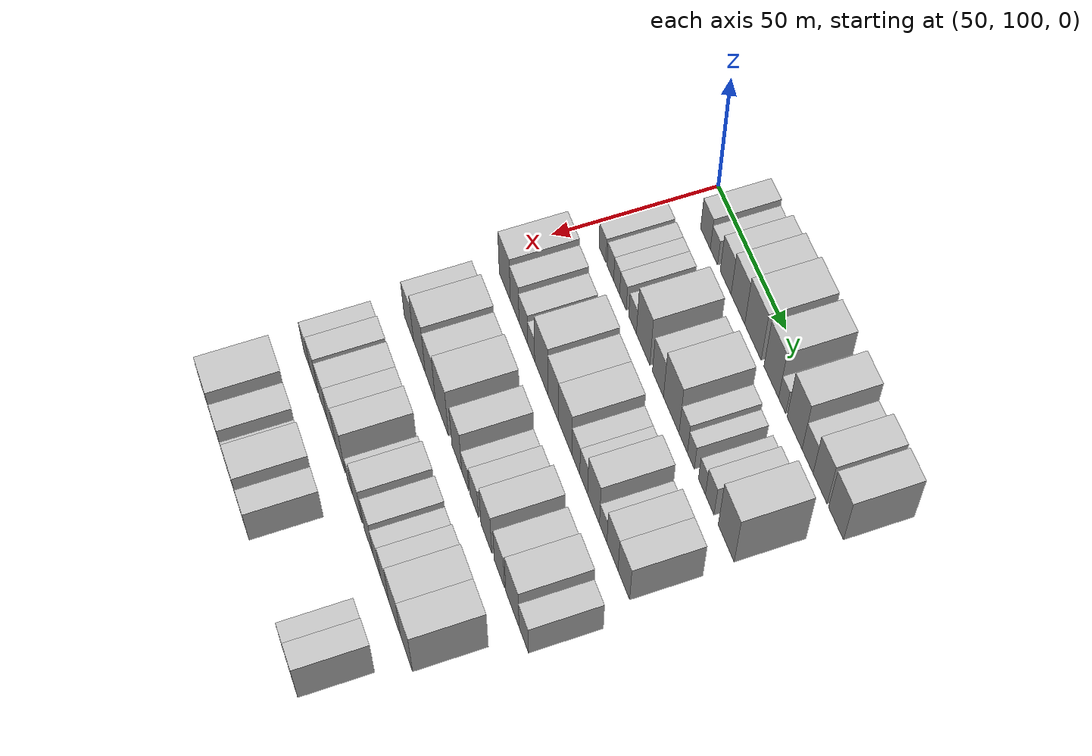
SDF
<sdf version="1.6">
 <world name="default">
  <model name="building_63">
   <static>1</static>
   <pose>50.0000 115.3771 0 0.000000 0.000000 0.000000</pose>
   <link name="link">
    <pose>0 0 7.50 0 0 0</pose>
    <collision name="collision"><geometry><box><size>20.0000 7.4433 15.0000</size></box></geometry></collision>
    <visual name="visual">
     <cast_shadows>0</cast_shadows>
     <geometry><box><size>20.0000 7.4433 15.0000</size></box></geometry>
     <material>
      <script>
       <uri>model://HANNAS_wall/materials/scripts</uri>
       <uri>model://HANNAS_wall/materials/textures</uri>
       <name>vrc/HANNAS_wall</name>
      </script>
     </material>
    </visual>
   </link>
  </model>
  <model name="building_64">
   <static>1</static>
   <pose>50.0000 121.8383 0 0.000000 0.000000 0.000000</pose>
   <link name="link">
    <pose>0 0 6.00 0 0 0</pose>
    <collision name="collision"><geometry><box><size>20.0000 5.4791 12.0000</size></box></geometry></collision>
    <visual name="visual">
     <cast_shadows>0</cast_shadows>
     <geometry><box><size>20.0000 5.4791 12.0000</size></box></geometry>
     <material>
      <script>
       <uri>model://HANNAS_wall/materials/scripts</uri>
       <uri>model://HANNAS_wall/materials/textures</uri>
       <name>vrc/HANNAS_wall</name>
      </script>
     </material>
    </visual>
   </link>
  </model>
  <model name="building_65">
   <static>1</static>
   <pose>50.0000 130.6631 0 0.000000 0.000000 0.000000</pose>
   <link name="link">
    <pose>0 0 9.00 0 0 0</pose>
    <collision name="collision"><geometry><box><size>20.0000 8.1705 18.0000</size></box></geometry></collision>
    <visual name="visual">
     <cast_shadows>0</cast_shadows>
     <geometry><box><size>20.0000 8.1705 18.0000</size></box></geometry>
     <material>
      <script>
       <uri>model://HANNAS_wall/materials/scripts</uri>
       <uri>model://HANNAS_wall/materials/textures</uri>
       <name>vrc/HANNAS_wall</name>
      </script>
     </material>
    </visual>
   </link>
  </model>
  <model name="building_66">
   <static>1</static>
   <pose>50.0000 139.7896 0 0.000000 0.000000 0.000000</pose>
   <link name="link">
    <pose>0 0 10.50 0 0 0</pose>
    <collision name="collision"><geometry><box><size>20.0000 10.0825 21.0000</size></box></geometry></collision>
    <visual name="visual">
     <cast_shadows>0</cast_shadows>
     <geometry><box><size>20.0000 10.0825 21.0000</size></box></geometry>
     <material>
      <script>
       <uri>model://HANNAS_wall/materials/scripts</uri>
       <uri>model://HANNAS_wall/materials/textures</uri>
       <name>vrc/HANNAS_wall</name>
      </script>
     </material>
    </visual>
   </link>
  </model>
  <model name="building_67">
   <static>1</static>
   <pose>50.0000 150.7996 0 0.000000 0.000000 0.000000</pose>
   <link name="link">
    <pose>0 0 12.00 0 0 0</pose>
    <collision name="collision"><geometry><box><size>20.0000 11.9375 24.0000</size></box></geometry></collision>
    <visual name="visual">
     <cast_shadows>0</cast_shadows>
     <geometry><box><size>20.0000 11.9375 24.0000</size></box></geometry>
     <material>
      <script>
       <uri>model://HANNAS_wall/materials/scripts</uri>
       <uri>model://HANNAS_wall/materials/textures</uri>
       <name>vrc/HANNAS_wall</name>
      </script>
     </material>
    </visual>
   </link>
  </model>
  <model name="building_68">
   <static>1</static>
   <pose>50.0000 163.9670 0 0.000000 0.000000 0.000000</pose>
   <link name="link">
    <pose>0 0 12.00 0 0 0</pose>
    <collision name="collision"><geometry><box><size>20.0000 10.3972 24.0000</size></box></geometry></collision>
    <visual name="visual">
     <cast_shadows>0</cast_shadows>
     <geometry><box><size>20.0000 10.3972 24.0000</size></box></geometry>
     <material>
      <script>
       <uri>model://HANNAS_wall/materials/scripts</uri>
       <uri>model://HANNAS_wall/materials/textures</uri>
       <name>vrc/HANNAS_wall</name>
      </script>
     </material>
    </visual>
   </link>
  </model>
  <model name="building_69">
   <static>1</static>
   <pose>50.0000 171.6645 0 0.000000 0.000000 0.000000</pose>
   <link name="link">
    <pose>0 0 6.00 0 0 0</pose>
    <collision name="collision"><geometry><box><size>20.0000 4.9980 12.0000</size></box></geometry></collision>
    <visual name="visual">
     <cast_shadows>0</cast_shadows>
     <geometry><box><size>20.0000 4.9980 12.0000</size></box></geometry>
     <material>
      <script>
       <uri>model://HANNAS_wall/materials/scripts</uri>
       <uri>model://HANNAS_wall/materials/textures</uri>
       <name>vrc/HANNAS_wall</name>
      </script>
     </material>
    </visual>
   </link>
  </model>
  <model name="building_70">
   <static>1</static>
   <pose>50.0000 180.3432 0 0.000000 0.000000 0.000000</pose>
   <link name="link">
    <pose>0 0 12.00 0 0 0</pose>
    <collision name="collision"><geometry><box><size>20.0000 10.3592 24.0000</size></box></geometry></collision>
    <visual name="visual">
     <cast_shadows>0</cast_shadows>
     <geometry><box><size>20.0000 10.3592 24.0000</size></box></geometry>
     <material>
      <script>
       <uri>model://HANNAS_wall/materials/scripts</uri>
       <uri>model://HANNAS_wall/materials/textures</uri>
       <name>vrc/HANNAS_wall</name>
      </script>
     </material>
    </visual>
   </link>
  </model>
  <model name="building_71">
   <static>1</static>
   <pose>50.0000 189.2716 0 0.000000 0.000000 0.000000</pose>
   <link name="link">
    <pose>0 0 7.50 0 0 0</pose>
    <collision name="collision"><geometry><box><size>20.0000 7.4976 15.0000</size></box></geometry></collision>
    <visual name="visual">
     <cast_shadows>0</cast_shadows>
     <geometry><box><size>20.0000 7.4976 15.0000</size></box></geometry>
     <material>
      <script>
       <uri>model://HANNAS_wall/materials/scripts</uri>
       <uri>model://HANNAS_wall/materials/textures</uri>
       <name>vrc/HANNAS_wall</name>
      </script>
     </material>
    </visual>
   </link>
  </model>
  <model name="building_72">
   <static>1</static>
   <pose>50.0000 197.7321 0 0.000000 0.000000 0.000000</pose>
   <link name="link">
    <pose>0 0 10.50 0 0 0</pose>
    <collision name="collision"><geometry><box><size>20.0000 9.4233 21.0000</size></box></geometry></collision>
    <visual name="visual">
     <cast_shadows>0</cast_shadows>
     <geometry><box><size>20.0000 9.4233 21.0000</size></box></geometry>
     <material>
      <script>
       <uri>model://HANNAS_wall/materials/scripts</uri>
       <uri>model://HANNAS_wall/materials/textures</uri>
       <name>vrc/HANNAS_wall</name>
      </script>
     </material>
    </visual>
   </link>
  </model>
  <model name="building_73">
   <static>1</static>
   <pose>50.0000 208.3866 0 0.000000 0.000000 0.000000</pose>
   <link name="link">
    <pose>0 0 10.50 0 0 0</pose>
    <collision name="collision"><geometry><box><size>20.0000 9.8857 21.0000</size></box></geometry></collision>
    <visual name="visual">
     <cast_shadows>0</cast_shadows>
     <geometry><box><size>20.0000 9.8857 21.0000</size></box></geometry>
     <material>
      <script>
       <uri>model://HANNAS_wall/materials/scripts</uri>
       <uri>model://HANNAS_wall/materials/textures</uri>
       <name>vrc/HANNAS_wall</name>
      </script>
     </material>
    </visual>
   </link>
  </model>
  <model name="building_176">
   <static>1</static>
   <pose>79.0000 110.8158 0 0.000000 0.000000 0.000000</pose>
   <link name="link">
    <pose>0 0 6.00 0 0 0</pose>
    <collision name="collision"><geometry><box><size>20.0000 5.6248 12.0000</size></box></geometry></collision>
    <visual name="visual">
     <cast_shadows>0</cast_shadows>
     <geometry><box><size>20.0000 5.6248 12.0000</size></box></geometry>
     <material>
      <script>
       <uri>model://HANNAS_wall/materials/scripts</uri>
       <uri>model://HANNAS_wall/materials/textures</uri>
       <name>vrc/HANNAS_wall</name>
      </script>
     </material>
    </visual>
   </link>
  </model>
  <model name="building_177">
   <static>1</static>
   <pose>79.0000 117.2338 0 0.000000 0.000000 0.000000</pose>
   <link name="link">
    <pose>0 0 6.00 0 0 0</pose>
    <collision name="collision"><geometry><box><size>20.0000 5.2111 12.0000</size></box></geometry></collision>
    <visual name="visual">
     <cast_shadows>0</cast_shadows>
     <geometry><box><size>20.0000 5.2111 12.0000</size></box></geometry>
     <material>
      <script>
       <uri>model://HANNAS_wall/materials/scripts</uri>
       <uri>model://HANNAS_wall/materials/textures</uri>
       <name>vrc/HANNAS_wall</name>
      </script>
     </material>
    </visual>
   </link>
  </model>
  <model name="building_178">
   <static>1</static>
   <pose>79.0000 122.2404 0 0.000000 0.000000 0.000000</pose>
   <link name="link">
    <pose>0 0 6.00 0 0 0</pose>
    <collision name="collision"><geometry><box><size>20.0000 4.8023 12.0000</size></box></geometry></collision>
    <visual name="visual">
     <cast_shadows>0</cast_shadows>
     <geometry><box><size>20.0000 4.8023 12.0000</size></box></geometry>
     <material>
      <script>
       <uri>model://HANNAS_wall/materials/scripts</uri>
       <uri>model://HANNAS_wall/materials/textures</uri>
       <name>vrc/HANNAS_wall</name>
      </script>
     </material>
    </visual>
   </link>
  </model>
  <model name="building_179">
   <static>1</static>
   <pose>79.0000 127.2567 0 0.000000 0.000000 0.000000</pose>
   <link name="link">
    <pose>0 0 6.00 0 0 0</pose>
    <collision name="collision"><geometry><box><size>20.0000 5.2304 12.0000</size></box></geometry></collision>
    <visual name="visual">
     <cast_shadows>0</cast_shadows>
     <geometry><box><size>20.0000 5.2304 12.0000</size></box></geometry>
     <material>
      <script>
       <uri>model://HANNAS_wall/materials/scripts</uri>
       <uri>model://HANNAS_wall/materials/textures</uri>
       <name>vrc/HANNAS_wall</name>
      </script>
     </material>
    </visual>
   </link>
  </model>
  <model name="building_180">
   <static>1</static>
   <pose>79.0000 134.8545 0 0.000000 0.000000 0.000000</pose>
   <link name="link">
    <pose>0 0 6.00 0 0 0</pose>
    <collision name="collision"><geometry><box><size>20.0000 5.9651 12.0000</size></box></geometry></collision>
    <visual name="visual">
     <cast_shadows>0</cast_shadows>
     <geometry><box><size>20.0000 5.9651 12.0000</size></box></geometry>
     <material>
      <script>
       <uri>model://HANNAS_wall/materials/scripts</uri>
       <uri>model://HANNAS_wall/materials/textures</uri>
       <name>vrc/HANNAS_wall</name>
      </script>
     </material>
    </visual>
   </link>
  </model>
  <model name="building_181">
   <static>1</static>
   <pose>79.0000 143.0494 0 0.000000 0.000000 0.000000</pose>
   <link name="link">
    <pose>0 0 12.00 0 0 0</pose>
    <collision name="collision"><geometry><box><size>20.0000 10.4246 24.0000</size></box></geometry></collision>
    <visual name="visual">
     <cast_shadows>0</cast_shadows>
     <geometry><box><size>20.0000 10.4246 24.0000</size></box></geometry>
     <material>
      <script>
       <uri>model://HANNAS_wall/materials/scripts</uri>
       <uri>model://HANNAS_wall/materials/textures</uri>
       <name>vrc/HANNAS_wall</name>
      </script>
     </material>
    </visual>
   </link>
  </model>
  <model name="building_182">
   <static>1</static>
   <pose>79.0000 154.4516 0 0.000000 0.000000 0.000000</pose>
   <link name="link">
    <pose>0 0 9.00 0 0 0</pose>
    <collision name="collision"><geometry><box><size>20.0000 8.3797 18.0000</size></box></geometry></collision>
    <visual name="visual">
     <cast_shadows>0</cast_shadows>
     <geometry><box><size>20.0000 8.3797 18.0000</size></box></geometry>
     <material>
      <script>
       <uri>model://HANNAS_wall/materials/scripts</uri>
       <uri>model://HANNAS_wall/materials/textures</uri>
       <name>vrc/HANNAS_wall</name>
      </script>
     </material>
    </visual>
   </link>
  </model>
  <model name="building_183">
   <static>1</static>
   <pose>79.0000 164.4471 0 0.000000 0.000000 0.000000</pose>
   <link name="link">
    <pose>0 0 12.00 0 0 0</pose>
    <collision name="collision"><geometry><box><size>20.0000 11.6113 24.0000</size></box></geometry></collision>
    <visual name="visual">
     <cast_shadows>0</cast_shadows>
     <geometry><box><size>20.0000 11.6113 24.0000</size></box></geometry>
     <material>
      <script>
       <uri>model://HANNAS_wall/materials/scripts</uri>
       <uri>model://HANNAS_wall/materials/textures</uri>
       <name>vrc/HANNAS_wall</name>
      </script>
     </material>
    </visual>
   </link>
  </model>
  <model name="building_184">
   <static>1</static>
   <pose>79.0000 173.3380 0 0.000000 0.000000 0.000000</pose>
   <link name="link">
    <pose>0 0 7.50 0 0 0</pose>
    <collision name="collision"><geometry><box><size>20.0000 6.1706 15.0000</size></box></geometry></collision>
    <visual name="visual">
     <cast_shadows>0</cast_shadows>
     <geometry><box><size>20.0000 6.1706 15.0000</size></box></geometry>
     <material>
      <script>
       <uri>model://HANNAS_wall/materials/scripts</uri>
       <uri>model://HANNAS_wall/materials/textures</uri>
       <name>vrc/HANNAS_wall</name>
      </script>
     </material>
    </visual>
   </link>
  </model>
  <model name="building_185">
   <static>1</static>
   <pose>79.0000 178.9590 0 0.000000 0.000000 0.000000</pose>
   <link name="link">
    <pose>0 0 6.00 0 0 0</pose>
    <collision name="collision"><geometry><box><size>20.0000 5.0712 12.0000</size></box></geometry></collision>
    <visual name="visual">
     <cast_shadows>0</cast_shadows>
     <geometry><box><size>20.0000 5.0712 12.0000</size></box></geometry>
     <material>
      <script>
       <uri>model://HANNAS_wall/materials/scripts</uri>
       <uri>model://HANNAS_wall/materials/textures</uri>
       <name>vrc/HANNAS_wall</name>
      </script>
     </material>
    </visual>
   </link>
  </model>
  <model name="building_186">
   <static>1</static>
   <pose>79.0000 186.9917 0 0.000000 0.000000 0.000000</pose>
   <link name="link">
    <pose>0 0 6.00 0 0 0</pose>
    <collision name="collision"><geometry><box><size>20.0000 4.9943 12.0000</size></box></geometry></collision>
    <visual name="visual">
     <cast_shadows>0</cast_shadows>
     <geometry><box><size>20.0000 4.9943 12.0000</size></box></geometry>
     <material>
      <script>
       <uri>model://HANNAS_wall/materials/scripts</uri>
       <uri>model://HANNAS_wall/materials/textures</uri>
       <name>vrc/HANNAS_wall</name>
      </script>
     </material>
    </visual>
   </link>
  </model>
  <model name="building_187">
   <static>1</static>
   <pose>79.0000 192.5596 0 0.000000 0.000000 0.000000</pose>
   <link name="link">
    <pose>0 0 7.50 0 0 0</pose>
    <collision name="collision"><geometry><box><size>20.0000 6.1416 15.0000</size></box></geometry></collision>
    <visual name="visual">
     <cast_shadows>0</cast_shadows>
     <geometry><box><size>20.0000 6.1416 15.0000</size></box></geometry>
     <material>
      <script>
       <uri>model://HANNAS_wall/materials/scripts</uri>
       <uri>model://HANNAS_wall/materials/textures</uri>
       <name>vrc/HANNAS_wall</name>
      </script>
     </material>
    </visual>
   </link>
  </model>
  <model name="building_188">
   <static>1</static>
   <pose>79.0000 204.2074 0 0.000000 0.000000 0.000000</pose>
   <link name="link">
    <pose>0 0 12.00 0 0 0</pose>
    <collision name="collision"><geometry><box><size>20.0000 11.1540 24.0000</size></box></geometry></collision>
    <visual name="visual">
     <cast_shadows>0</cast_shadows>
     <geometry><box><size>20.0000 11.1540 24.0000</size></box></geometry>
     <material>
      <script>
       <uri>model://HANNAS_wall/materials/scripts</uri>
       <uri>model://HANNAS_wall/materials/textures</uri>
       <name>vrc/HANNAS_wall</name>
      </script>
     </material>
    </visual>
   </link>
  </model>
  <model name="building_295">
   <static>1</static>
   <pose>108.0000 111.7266 0 0.000000 0.000000 0.000000</pose>
   <link name="link">
    <pose>0 0 10.50 0 0 0</pose>
    <collision name="collision"><geometry><box><size>20.0000 9.4398 21.0000</size></box></geometry></collision>
    <visual name="visual">
     <cast_shadows>0</cast_shadows>
     <geometry><box><size>20.0000 9.4398 21.0000</size></box></geometry>
     <material>
      <script>
       <uri>model://HANNAS_wall/materials/scripts</uri>
       <uri>model://HANNAS_wall/materials/textures</uri>
       <name>vrc/HANNAS_wall</name>
      </script>
     </material>
    </visual>
   </link>
  </model>
  <model name="building_296">
   <static>1</static>
   <pose>108.0000 120.1290 0 0.000000 0.000000 0.000000</pose>
   <link name="link">
    <pose>0 0 9.00 0 0 0</pose>
    <collision name="collision"><geometry><box><size>20.0000 7.3649 18.0000</size></box></geometry></collision>
    <visual name="visual">
     <cast_shadows>0</cast_shadows>
     <geometry><box><size>20.0000 7.3649 18.0000</size></box></geometry>
     <material>
      <script>
       <uri>model://HANNAS_wall/materials/scripts</uri>
       <uri>model://HANNAS_wall/materials/textures</uri>
       <name>vrc/HANNAS_wall</name>
      </script>
     </material>
    </visual>
   </link>
  </model>
  <model name="building_297">
   <static>1</static>
   <pose>108.0000 127.4878 0 0.000000 0.000000 0.000000</pose>
   <link name="link">
    <pose>0 0 7.50 0 0 0</pose>
    <collision name="collision"><geometry><box><size>20.0000 7.3527 15.0000</size></box></geometry></collision>
    <visual name="visual">
     <cast_shadows>0</cast_shadows>
     <geometry><box><size>20.0000 7.3527 15.0000</size></box></geometry>
     <material>
      <script>
       <uri>model://HANNAS_wall/materials/scripts</uri>
       <uri>model://HANNAS_wall/materials/textures</uri>
       <name>vrc/HANNAS_wall</name>
      </script>
     </material>
    </visual>
   </link>
  </model>
  <model name="building_298">
   <static>1</static>
   <pose>108.0000 134.0249 0 0.000000 0.000000 0.000000</pose>
   <link name="link">
    <pose>0 0 6.00 0 0 0</pose>
    <collision name="collision"><geometry><box><size>20.0000 5.7215 12.0000</size></box></geometry></collision>
    <visual name="visual">
     <cast_shadows>0</cast_shadows>
     <geometry><box><size>20.0000 5.7215 12.0000</size></box></geometry>
     <material>
      <script>
       <uri>model://HANNAS_wall/materials/scripts</uri>
       <uri>model://HANNAS_wall/materials/textures</uri>
       <name>vrc/HANNAS_wall</name>
      </script>
     </material>
    </visual>
   </link>
  </model>
  <model name="building_299">
   <static>1</static>
   <pose>108.0000 142.2039 0 0.000000 0.000000 0.000000</pose>
   <link name="link">
    <pose>0 0 12.00 0 0 0</pose>
    <collision name="collision"><geometry><box><size>20.0000 10.6365 24.0000</size></box></geometry></collision>
    <visual name="visual">
     <cast_shadows>0</cast_shadows>
     <geometry><box><size>20.0000 10.6365 24.0000</size></box></geometry>
     <material>
      <script>
       <uri>model://HANNAS_wall/materials/scripts</uri>
       <uri>model://HANNAS_wall/materials/textures</uri>
       <name>vrc/HANNAS_wall</name>
      </script>
     </material>
    </visual>
   </link>
  </model>
  <model name="building_300">
   <static>1</static>
   <pose>108.0000 151.9339 0 0.000000 0.000000 0.000000</pose>
   <link name="link">
    <pose>0 0 10.50 0 0 0</pose>
    <collision name="collision"><geometry><box><size>20.0000 8.8236 21.0000</size></box></geometry></collision>
    <visual name="visual">
     <cast_shadows>0</cast_shadows>
     <geometry><box><size>20.0000 8.8236 21.0000</size></box></geometry>
     <material>
      <script>
       <uri>model://HANNAS_wall/materials/scripts</uri>
       <uri>model://HANNAS_wall/materials/textures</uri>
       <name>vrc/HANNAS_wall</name>
      </script>
     </material>
    </visual>
   </link>
  </model>
  <model name="building_301">
   <static>1</static>
   <pose>108.0000 161.5644 0 0.000000 0.000000 0.000000</pose>
   <link name="link">
    <pose>0 0 10.50 0 0 0</pose>
    <collision name="collision"><geometry><box><size>20.0000 10.4373 21.0000</size></box></geometry></collision>
    <visual name="visual">
     <cast_shadows>0</cast_shadows>
     <geometry><box><size>20.0000 10.4373 21.0000</size></box></geometry>
     <material>
      <script>
       <uri>model://HANNAS_wall/materials/scripts</uri>
       <uri>model://HANNAS_wall/materials/textures</uri>
       <name>vrc/HANNAS_wall</name>
      </script>
     </material>
    </visual>
   </link>
  </model>
  <model name="building_302">
   <static>1</static>
   <pose>108.0000 169.9198 0 0.000000 0.000000 0.000000</pose>
   <link name="link">
    <pose>0 0 7.50 0 0 0</pose>
    <collision name="collision"><geometry><box><size>20.0000 6.2737 15.0000</size></box></geometry></collision>
    <visual name="visual">
     <cast_shadows>0</cast_shadows>
     <geometry><box><size>20.0000 6.2737 15.0000</size></box></geometry>
     <material>
      <script>
       <uri>model://HANNAS_wall/materials/scripts</uri>
       <uri>model://HANNAS_wall/materials/textures</uri>
       <name>vrc/HANNAS_wall</name>
      </script>
     </material>
    </visual>
   </link>
  </model>
  <model name="building_303">
   <static>1</static>
   <pose>108.0000 176.0762 0 0.000000 0.000000 0.000000</pose>
   <link name="link">
    <pose>0 0 7.50 0 0 0</pose>
    <collision name="collision"><geometry><box><size>20.0000 6.0390 15.0000</size></box></geometry></collision>
    <visual name="visual">
     <cast_shadows>0</cast_shadows>
     <geometry><box><size>20.0000 6.0390 15.0000</size></box></geometry>
     <material>
      <script>
       <uri>model://HANNAS_wall/materials/scripts</uri>
       <uri>model://HANNAS_wall/materials/textures</uri>
       <name>vrc/HANNAS_wall</name>
      </script>
     </material>
    </visual>
   </link>
  </model>
  <model name="building_304">
   <static>1</static>
   <pose>108.0000 183.6505 0 0.000000 0.000000 0.000000</pose>
   <link name="link">
    <pose>0 0 10.50 0 0 0</pose>
    <collision name="collision"><geometry><box><size>20.0000 9.1097 21.0000</size></box></geometry></collision>
    <visual name="visual">
     <cast_shadows>0</cast_shadows>
     <geometry><box><size>20.0000 9.1097 21.0000</size></box></geometry>
     <material>
      <script>
       <uri>model://HANNAS_wall/materials/scripts</uri>
       <uri>model://HANNAS_wall/materials/textures</uri>
       <name>vrc/HANNAS_wall</name>
      </script>
     </material>
    </visual>
   </link>
  </model>
  <model name="building_305">
   <static>1</static>
   <pose>108.0000 191.0064 0 0.000000 0.000000 0.000000</pose>
   <link name="link">
    <pose>0 0 6.00 0 0 0</pose>
    <collision name="collision"><geometry><box><size>20.0000 5.6020 12.0000</size></box></geometry></collision>
    <visual name="visual">
     <cast_shadows>0</cast_shadows>
     <geometry><box><size>20.0000 5.6020 12.0000</size></box></geometry>
     <material>
      <script>
       <uri>model://HANNAS_wall/materials/scripts</uri>
       <uri>model://HANNAS_wall/materials/textures</uri>
       <name>vrc/HANNAS_wall</name>
      </script>
     </material>
    </visual>
   </link>
  </model>
  <model name="building_306">
   <static>1</static>
   <pose>108.0000 197.9765 0 0.000000 0.000000 0.000000</pose>
   <link name="link">
    <pose>0 0 9.00 0 0 0</pose>
    <collision name="collision"><geometry><box><size>20.0000 8.3383 18.0000</size></box></geometry></collision>
    <visual name="visual">
     <cast_shadows>0</cast_shadows>
     <geometry><box><size>20.0000 8.3383 18.0000</size></box></geometry>
     <material>
      <script>
       <uri>model://HANNAS_wall/materials/scripts</uri>
       <uri>model://HANNAS_wall/materials/textures</uri>
       <name>vrc/HANNAS_wall</name>
      </script>
     </material>
    </visual>
   </link>
  </model>
  <model name="building_307">
   <static>1</static>
   <pose>108.0000 206.4392 0 0.000000 0.000000 0.000000</pose>
   <link name="link">
    <pose>0 0 9.00 0 0 0</pose>
    <collision name="collision"><geometry><box><size>20.0000 8.5872 18.0000</size></box></geometry></collision>
    <visual name="visual">
     <cast_shadows>0</cast_shadows>
     <geometry><box><size>20.0000 8.5872 18.0000</size></box></geometry>
     <material>
      <script>
       <uri>model://HANNAS_wall/materials/scripts</uri>
       <uri>model://HANNAS_wall/materials/textures</uri>
       <name>vrc/HANNAS_wall</name>
      </script>
     </material>
    </visual>
   </link>
  </model>
  <model name="building_417">
   <static>1</static>
   <pose>137.0000 115.8206 0 0.000000 0.000000 0.000000</pose>
   <link name="link">
    <pose>0 0 9.00 0 0 0</pose>
    <collision name="collision"><geometry><box><size>20.0000 8.4355 18.0000</size></box></geometry></collision>
    <visual name="visual">
     <cast_shadows>0</cast_shadows>
     <geometry><box><size>20.0000 8.4355 18.0000</size></box></geometry>
     <material>
      <script>
       <uri>model://HANNAS_wall/materials/scripts</uri>
       <uri>model://HANNAS_wall/materials/textures</uri>
       <name>vrc/HANNAS_wall</name>
      </script>
     </material>
    </visual>
   </link>
  </model>
  <model name="building_418">
   <static>1</static>
   <pose>137.0000 125.2252 0 0.000000 0.000000 0.000000</pose>
   <link name="link">
    <pose>0 0 12.00 0 0 0</pose>
    <collision name="collision"><geometry><box><size>20.0000 10.3736 24.0000</size></box></geometry></collision>
    <visual name="visual">
     <cast_shadows>0</cast_shadows>
     <geometry><box><size>20.0000 10.3736 24.0000</size></box></geometry>
     <material>
      <script>
       <uri>model://HANNAS_wall/materials/scripts</uri>
       <uri>model://HANNAS_wall/materials/textures</uri>
       <name>vrc/HANNAS_wall</name>
      </script>
     </material>
    </visual>
   </link>
  </model>
  <model name="building_419">
   <static>1</static>
   <pose>137.0000 134.8902 0 0.000000 0.000000 0.000000</pose>
   <link name="link">
    <pose>0 0 10.50 0 0 0</pose>
    <collision name="collision"><geometry><box><size>20.0000 8.9564 21.0000</size></box></geometry></collision>
    <visual name="visual">
     <cast_shadows>0</cast_shadows>
     <geometry><box><size>20.0000 8.9564 21.0000</size></box></geometry>
     <material>
      <script>
       <uri>model://HANNAS_wall/materials/scripts</uri>
       <uri>model://HANNAS_wall/materials/textures</uri>
       <name>vrc/HANNAS_wall</name>
      </script>
     </material>
    </visual>
   </link>
  </model>
  <model name="building_420">
   <static>1</static>
   <pose>137.0000 145.0246 0 0.000000 0.000000 0.000000</pose>
   <link name="link">
    <pose>0 0 12.00 0 0 0</pose>
    <collision name="collision"><geometry><box><size>20.0000 11.3124 24.0000</size></box></geometry></collision>
    <visual name="visual">
     <cast_shadows>0</cast_shadows>
     <geometry><box><size>20.0000 11.3124 24.0000</size></box></geometry>
     <material>
      <script>
       <uri>model://HANNAS_wall/materials/scripts</uri>
       <uri>model://HANNAS_wall/materials/textures</uri>
       <name>vrc/HANNAS_wall</name>
      </script>
     </material>
    </visual>
   </link>
  </model>
  <model name="building_421">
   <static>1</static>
   <pose>137.0000 157.9220 0 0.000000 0.000000 0.000000</pose>
   <link name="link">
    <pose>0 0 10.50 0 0 0</pose>
    <collision name="collision"><geometry><box><size>20.0000 8.4823 21.0000</size></box></geometry></collision>
    <visual name="visual">
     <cast_shadows>0</cast_shadows>
     <geometry><box><size>20.0000 8.4823 21.0000</size></box></geometry>
     <material>
      <script>
       <uri>model://HANNAS_wall/materials/scripts</uri>
       <uri>model://HANNAS_wall/materials/textures</uri>
       <name>vrc/HANNAS_wall</name>
      </script>
     </material>
    </visual>
   </link>
  </model>
  <model name="building_422">
   <static>1</static>
   <pose>137.0000 165.0081 0 0.000000 0.000000 0.000000</pose>
   <link name="link">
    <pose>0 0 6.00 0 0 0</pose>
    <collision name="collision"><geometry><box><size>20.0000 5.6898 12.0000</size></box></geometry></collision>
    <visual name="visual">
     <cast_shadows>0</cast_shadows>
     <geometry><box><size>20.0000 5.6898 12.0000</size></box></geometry>
     <material>
      <script>
       <uri>model://HANNAS_wall/materials/scripts</uri>
       <uri>model://HANNAS_wall/materials/textures</uri>
       <name>vrc/HANNAS_wall</name>
      </script>
     </material>
    </visual>
   </link>
  </model>
  <model name="building_423">
   <static>1</static>
   <pose>137.0000 172.4194 0 0.000000 0.000000 0.000000</pose>
   <link name="link">
    <pose>0 0 7.50 0 0 0</pose>
    <collision name="collision"><geometry><box><size>20.0000 7.1328 15.0000</size></box></geometry></collision>
    <visual name="visual">
     <cast_shadows>0</cast_shadows>
     <geometry><box><size>20.0000 7.1328 15.0000</size></box></geometry>
     <material>
      <script>
       <uri>model://HANNAS_wall/materials/scripts</uri>
       <uri>model://HANNAS_wall/materials/textures</uri>
       <name>vrc/HANNAS_wall</name>
      </script>
     </material>
    </visual>
   </link>
  </model>
  <model name="building_424">
   <static>1</static>
   <pose>137.0000 182.4482 0 0.000000 0.000000 0.000000</pose>
   <link name="link">
    <pose>0 0 10.50 0 0 0</pose>
    <collision name="collision"><geometry><box><size>20.0000 8.9247 21.0000</size></box></geometry></collision>
    <visual name="visual">
     <cast_shadows>0</cast_shadows>
     <geometry><box><size>20.0000 8.9247 21.0000</size></box></geometry>
     <material>
      <script>
       <uri>model://HANNAS_wall/materials/scripts</uri>
       <uri>model://HANNAS_wall/materials/textures</uri>
       <name>vrc/HANNAS_wall</name>
      </script>
     </material>
    </visual>
   </link>
  </model>
  <model name="building_425">
   <static>1</static>
   <pose>137.0000 192.9971 0 0.000000 0.000000 0.000000</pose>
   <link name="link">
    <pose>0 0 9.00 0 0 0</pose>
    <collision name="collision"><geometry><box><size>20.0000 8.1730 18.0000</size></box></geometry></collision>
    <visual name="visual">
     <cast_shadows>0</cast_shadows>
     <geometry><box><size>20.0000 8.1730 18.0000</size></box></geometry>
     <material>
      <script>
       <uri>model://HANNAS_wall/materials/scripts</uri>
       <uri>model://HANNAS_wall/materials/textures</uri>
       <name>vrc/HANNAS_wall</name>
      </script>
     </material>
    </visual>
   </link>
  </model>
  <model name="building_426">
   <static>1</static>
   <pose>137.0000 203.3093 0 0.000000 0.000000 0.000000</pose>
   <link name="link">
    <pose>0 0 10.50 0 0 0</pose>
    <collision name="collision"><geometry><box><size>20.0000 10.4514 21.0000</size></box></geometry></collision>
    <visual name="visual">
     <cast_shadows>0</cast_shadows>
     <geometry><box><size>20.0000 10.4514 21.0000</size></box></geometry>
     <material>
      <script>
       <uri>model://HANNAS_wall/materials/scripts</uri>
       <uri>model://HANNAS_wall/materials/textures</uri>
       <name>vrc/HANNAS_wall</name>
      </script>
     </material>
    </visual>
   </link>
  </model>
  <model name="building_427">
   <static>1</static>
   <pose>137.0000 212.2081 0 0.000000 0.000000 0.000000</pose>
   <link name="link">
    <pose>0 0 7.50 0 0 0</pose>
    <collision name="collision"><geometry><box><size>20.0000 7.3462 15.0000</size></box></geometry></collision>
    <visual name="visual">
     <cast_shadows>0</cast_shadows>
     <geometry><box><size>20.0000 7.3462 15.0000</size></box></geometry>
     <material>
      <script>
       <uri>model://HANNAS_wall/materials/scripts</uri>
       <uri>model://HANNAS_wall/materials/textures</uri>
       <name>vrc/HANNAS_wall</name>
      </script>
     </material>
    </visual>
   </link>
  </model>
  <model name="building_530">
   <static>1</static>
   <pose>166.0000 116.1914 0 0.000000 0.000000 0.000000</pose>
   <link name="link">
    <pose>0 0 7.50 0 0 0</pose>
    <collision name="collision"><geometry><box><size>20.0000 6.7684 15.0000</size></box></geometry></collision>
    <visual name="visual">
     <cast_shadows>0</cast_shadows>
     <geometry><box><size>20.0000 6.7684 15.0000</size></box></geometry>
     <material>
      <script>
       <uri>model://HANNAS_wall/materials/scripts</uri>
       <uri>model://HANNAS_wall/materials/textures</uri>
       <name>vrc/HANNAS_wall</name>
      </script>
     </material>
    </visual>
   </link>
  </model>
  <model name="building_531">
   <static>1</static>
   <pose>166.0000 123.2402 0 0.000000 0.000000 0.000000</pose>
   <link name="link">
    <pose>0 0 9.00 0 0 0</pose>
    <collision name="collision"><geometry><box><size>20.0000 7.3294 18.0000</size></box></geometry></collision>
    <visual name="visual">
     <cast_shadows>0</cast_shadows>
     <geometry><box><size>20.0000 7.3294 18.0000</size></box></geometry>
     <material>
      <script>
       <uri>model://HANNAS_wall/materials/scripts</uri>
       <uri>model://HANNAS_wall/materials/textures</uri>
       <name>vrc/HANNAS_wall</name>
      </script>
     </material>
    </visual>
   </link>
  </model>
  <model name="building_532">
   <static>1</static>
   <pose>166.0000 131.8956 0 0.000000 0.000000 0.000000</pose>
   <link name="link">
    <pose>0 0 9.00 0 0 0</pose>
    <collision name="collision"><geometry><box><size>20.0000 7.9813 18.0000</size></box></geometry></collision>
    <visual name="visual">
     <cast_shadows>0</cast_shadows>
     <geometry><box><size>20.0000 7.9813 18.0000</size></box></geometry>
     <material>
      <script>
       <uri>model://HANNAS_wall/materials/scripts</uri>
       <uri>model://HANNAS_wall/materials/textures</uri>
       <name>vrc/HANNAS_wall</name>
      </script>
     </material>
    </visual>
   </link>
  </model>
  <model name="building_533">
   <static>1</static>
   <pose>166.0000 139.7776 0 0.000000 0.000000 0.000000</pose>
   <link name="link">
    <pose>0 0 9.00 0 0 0</pose>
    <collision name="collision"><geometry><box><size>20.0000 7.7827 18.0000</size></box></geometry></collision>
    <visual name="visual">
     <cast_shadows>0</cast_shadows>
     <geometry><box><size>20.0000 7.7827 18.0000</size></box></geometry>
     <material>
      <script>
       <uri>model://HANNAS_wall/materials/scripts</uri>
       <uri>model://HANNAS_wall/materials/textures</uri>
       <name>vrc/HANNAS_wall</name>
      </script>
     </material>
    </visual>
   </link>
  </model>
  <model name="building_534">
   <static>1</static>
   <pose>166.0000 147.9035 0 0.000000 0.000000 0.000000</pose>
   <link name="link">
    <pose>0 0 10.50 0 0 0</pose>
    <collision name="collision"><geometry><box><size>20.0000 8.4692 21.0000</size></box></geometry></collision>
    <visual name="visual">
     <cast_shadows>0</cast_shadows>
     <geometry><box><size>20.0000 8.4692 21.0000</size></box></geometry>
     <material>
      <script>
       <uri>model://HANNAS_wall/materials/scripts</uri>
       <uri>model://HANNAS_wall/materials/textures</uri>
       <name>vrc/HANNAS_wall</name>
      </script>
     </material>
    </visual>
   </link>
  </model>
  <model name="building_535">
   <static>1</static>
   <pose>166.0000 156.5391 0 0.000000 0.000000 0.000000</pose>
   <link name="link">
    <pose>0 0 6.00 0 0 0</pose>
    <collision name="collision"><geometry><box><size>20.0000 4.8021 12.0000</size></box></geometry></collision>
    <visual name="visual">
     <cast_shadows>0</cast_shadows>
     <geometry><box><size>20.0000 4.8021 12.0000</size></box></geometry>
     <material>
      <script>
       <uri>model://HANNAS_wall/materials/scripts</uri>
       <uri>model://HANNAS_wall/materials/textures</uri>
       <name>vrc/HANNAS_wall</name>
      </script>
     </material>
    </visual>
   </link>
  </model>
  <model name="building_536">
   <static>1</static>
   <pose>166.0000 163.2278 0 0.000000 0.000000 0.000000</pose>
   <link name="link">
    <pose>0 0 9.00 0 0 0</pose>
    <collision name="collision"><geometry><box><size>20.0000 8.5752 18.0000</size></box></geometry></collision>
    <visual name="visual">
     <cast_shadows>0</cast_shadows>
     <geometry><box><size>20.0000 8.5752 18.0000</size></box></geometry>
     <material>
      <script>
       <uri>model://HANNAS_wall/materials/scripts</uri>
       <uri>model://HANNAS_wall/materials/textures</uri>
       <name>vrc/HANNAS_wall</name>
      </script>
     </material>
    </visual>
   </link>
  </model>
  <model name="building_537">
   <static>1</static>
   <pose>166.0000 173.3758 0 0.000000 0.000000 0.000000</pose>
   <link name="link">
    <pose>0 0 9.00 0 0 0</pose>
    <collision name="collision"><geometry><box><size>20.0000 7.7209 18.0000</size></box></geometry></collision>
    <visual name="visual">
     <cast_shadows>0</cast_shadows>
     <geometry><box><size>20.0000 7.7209 18.0000</size></box></geometry>
     <material>
      <script>
       <uri>model://HANNAS_wall/materials/scripts</uri>
       <uri>model://HANNAS_wall/materials/textures</uri>
       <name>vrc/HANNAS_wall</name>
      </script>
     </material>
    </visual>
   </link>
  </model>
  <model name="building_538">
   <static>1</static>
   <pose>166.0000 180.5339 0 0.000000 0.000000 0.000000</pose>
   <link name="link">
    <pose>0 0 7.50 0 0 0</pose>
    <collision name="collision"><geometry><box><size>20.0000 6.5953 15.0000</size></box></geometry></collision>
    <visual name="visual">
     <cast_shadows>0</cast_shadows>
     <geometry><box><size>20.0000 6.5953 15.0000</size></box></geometry>
     <material>
      <script>
       <uri>model://HANNAS_wall/materials/scripts</uri>
       <uri>model://HANNAS_wall/materials/textures</uri>
       <name>vrc/HANNAS_wall</name>
      </script>
     </material>
    </visual>
   </link>
  </model>
  <model name="building_539">
   <static>1</static>
   <pose>166.0000 187.4323 0 0.000000 0.000000 0.000000</pose>
   <link name="link">
    <pose>0 0 9.00 0 0 0</pose>
    <collision name="collision"><geometry><box><size>20.0000 7.2016 18.0000</size></box></geometry></collision>
    <visual name="visual">
     <cast_shadows>0</cast_shadows>
     <geometry><box><size>20.0000 7.2016 18.0000</size></box></geometry>
     <material>
      <script>
       <uri>model://HANNAS_wall/materials/scripts</uri>
       <uri>model://HANNAS_wall/materials/textures</uri>
       <name>vrc/HANNAS_wall</name>
      </script>
     </material>
    </visual>
   </link>
  </model>
  <model name="building_540">
   <static>1</static>
   <pose>166.0000 195.9728 0 0.000000 0.000000 0.000000</pose>
   <link name="link">
    <pose>0 0 10.50 0 0 0</pose>
    <collision name="collision"><geometry><box><size>20.0000 9.8793 21.0000</size></box></geometry></collision>
    <visual name="visual">
     <cast_shadows>0</cast_shadows>
     <geometry><box><size>20.0000 9.8793 21.0000</size></box></geometry>
     <material>
      <script>
       <uri>model://HANNAS_wall/materials/scripts</uri>
       <uri>model://HANNAS_wall/materials/textures</uri>
       <name>vrc/HANNAS_wall</name>
      </script>
     </material>
    </visual>
   </link>
  </model>
  <model name="building_541">
   <static>1</static>
   <pose>166.0000 205.9409 0 0.000000 0.000000 0.000000</pose>
   <link name="link">
    <pose>0 0 10.50 0 0 0</pose>
    <collision name="collision"><geometry><box><size>20.0000 10.0570 21.0000</size></box></geometry></collision>
    <visual name="visual">
     <cast_shadows>0</cast_shadows>
     <geometry><box><size>20.0000 10.0570 21.0000</size></box></geometry>
     <material>
      <script>
       <uri>model://HANNAS_wall/materials/scripts</uri>
       <uri>model://HANNAS_wall/materials/textures</uri>
       <name>vrc/HANNAS_wall</name>
      </script>
     </material>
    </visual>
   </link>
  </model>
  <model name="building_640">
   <static>1</static>
   <pose>195.0000 116.7593 0 0.000000 0.000000 0.000000</pose>
   <link name="link">
    <pose>0 0 6.00 0 0 0</pose>
    <collision name="collision"><geometry><box><size>20.0000 5.1070 12.0000</size></box></geometry></collision>
    <visual name="visual">
     <cast_shadows>0</cast_shadows>
     <geometry><box><size>20.0000 5.1070 12.0000</size></box></geometry>
     <material>
      <script>
       <uri>model://HANNAS_wall/materials/scripts</uri>
       <uri>model://HANNAS_wall/materials/textures</uri>
       <name>vrc/HANNAS_wall</name>
      </script>
     </material>
    </visual>
   </link>
  </model>
  <model name="building_641">
   <static>1</static>
   <pose>195.0000 125.0058 0 0.000000 0.000000 0.000000</pose>
   <link name="link">
    <pose>0 0 12.00 0 0 0</pose>
    <collision name="collision"><geometry><box><size>20.0000 11.3859 24.0000</size></box></geometry></collision>
    <visual name="visual">
     <cast_shadows>0</cast_shadows>
     <geometry><box><size>20.0000 11.3859 24.0000</size></box></geometry>
     <material>
      <script>
       <uri>model://HANNAS_wall/materials/scripts</uri>
       <uri>model://HANNAS_wall/materials/textures</uri>
       <name>vrc/HANNAS_wall</name>
      </script>
     </material>
    </visual>
   </link>
  </model>
  <model name="building_642">
   <static>1</static>
   <pose>195.0000 134.8272 0 0.000000 0.000000 0.000000</pose>
   <link name="link">
    <pose>0 0 9.00 0 0 0</pose>
    <collision name="collision"><geometry><box><size>20.0000 8.2569 18.0000</size></box></geometry></collision>
    <visual name="visual">
     <cast_shadows>0</cast_shadows>
     <geometry><box><size>20.0000 8.2569 18.0000</size></box></geometry>
     <material>
      <script>
       <uri>model://HANNAS_wall/materials/scripts</uri>
       <uri>model://HANNAS_wall/materials/textures</uri>
       <name>vrc/HANNAS_wall</name>
      </script>
     </material>
    </visual>
   </link>
  </model>
  <model name="building_643">
   <static>1</static>
   <pose>195.0000 141.7938 0 0.000000 0.000000 0.000000</pose>
   <link name="link">
    <pose>0 0 6.00 0 0 0</pose>
    <collision name="collision"><geometry><box><size>20.0000 5.6762 12.0000</size></box></geometry></collision>
    <visual name="visual">
     <cast_shadows>0</cast_shadows>
     <geometry><box><size>20.0000 5.6762 12.0000</size></box></geometry>
     <material>
      <script>
       <uri>model://HANNAS_wall/materials/scripts</uri>
       <uri>model://HANNAS_wall/materials/textures</uri>
       <name>vrc/HANNAS_wall</name>
      </script>
     </material>
    </visual>
   </link>
  </model>
  <model name="building_644">
   <static>1</static>
   <pose>195.0000 149.8387 0 0.000000 0.000000 0.000000</pose>
   <link name="link">
    <pose>0 0 10.50 0 0 0</pose>
    <collision name="collision"><geometry><box><size>20.0000 10.4137 21.0000</size></box></geometry></collision>
    <visual name="visual">
     <cast_shadows>0</cast_shadows>
     <geometry><box><size>20.0000 10.4137 21.0000</size></box></geometry>
     <material>
      <script>
       <uri>model://HANNAS_wall/materials/scripts</uri>
       <uri>model://HANNAS_wall/materials/textures</uri>
       <name>vrc/HANNAS_wall</name>
      </script>
     </material>
    </visual>
   </link>
  </model>
  <model name="building_645">
   <static>1</static>
   <pose>195.0000 158.7832 0 0.000000 0.000000 0.000000</pose>
   <link name="link">
    <pose>0 0 7.50 0 0 0</pose>
    <collision name="collision"><geometry><box><size>20.0000 7.4752 15.0000</size></box></geometry></collision>
    <visual name="visual">
     <cast_shadows>0</cast_shadows>
     <geometry><box><size>20.0000 7.4752 15.0000</size></box></geometry>
     <material>
      <script>
       <uri>model://HANNAS_wall/materials/scripts</uri>
       <uri>model://HANNAS_wall/materials/textures</uri>
       <name>vrc/HANNAS_wall</name>
      </script>
     </material>
    </visual>
   </link>
  </model>
  <model name="building_646">
   <static>1</static>
   <pose>195.0000 196.9479 0 0.000000 0.000000 0.000000</pose>
   <link name="link">
    <pose>0 0 7.50 0 0 0</pose>
    <collision name="collision"><geometry><box><size>20.0000 6.9514 15.0000</size></box></geometry></collision>
    <visual name="visual">
     <cast_shadows>0</cast_shadows>
     <geometry><box><size>20.0000 6.9514 15.0000</size></box></geometry>
     <material>
      <script>
       <uri>model://HANNAS_wall/materials/scripts</uri>
       <uri>model://HANNAS_wall/materials/textures</uri>
       <name>vrc/HANNAS_wall</name>
      </script>
     </material>
    </visual>
   </link>
  </model>
  <model name="building_647">
   <static>1</static>
   <pose>195.0000 204.2260 0 0.000000 0.000000 0.000000</pose>
   <link name="link">
    <pose>0 0 9.00 0 0 0</pose>
    <collision name="collision"><geometry><box><size>20.0000 7.6047 18.0000</size></box></geometry></collision>
    <visual name="visual">
     <cast_shadows>0</cast_shadows>
     <geometry><box><size>20.0000 7.6047 18.0000</size></box></geometry>
     <material>
      <script>
       <uri>model://HANNAS_wall/materials/scripts</uri>
       <uri>model://HANNAS_wall/materials/textures</uri>
       <name>vrc/HANNAS_wall</name>
      </script>
     </material>
    </visual>
   </link>
  </model>
 </world>
</sdf>
